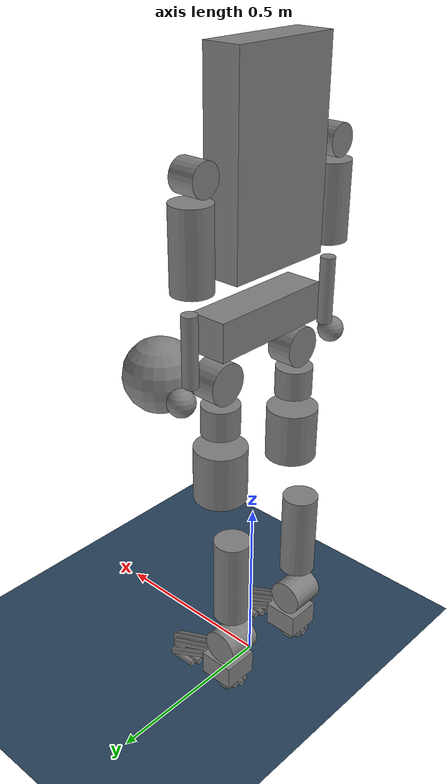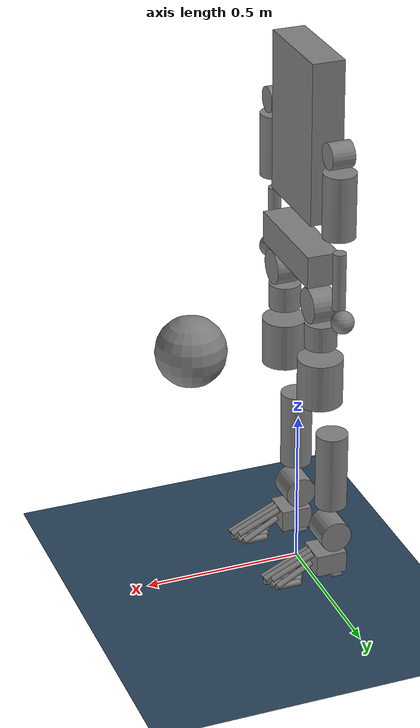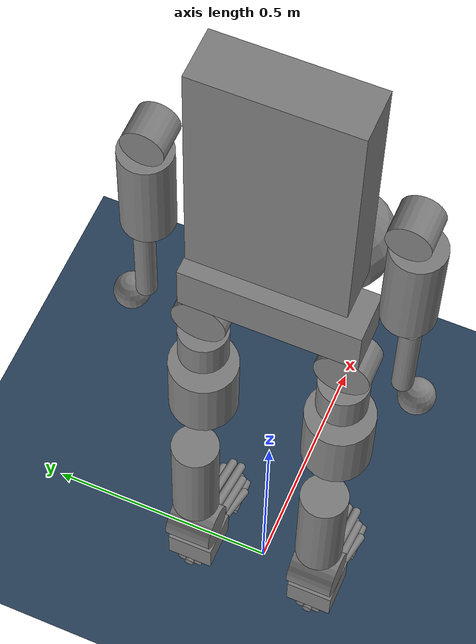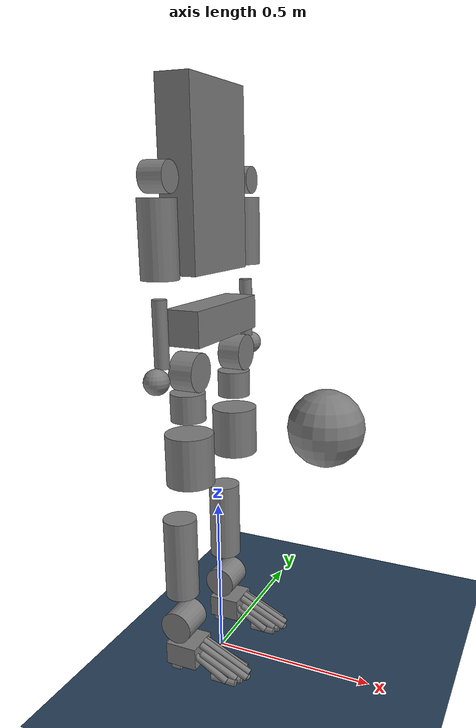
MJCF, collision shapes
<mujoco model="InRealV2_Soccer">
  <compiler angle="radian" meshdir="../mesh/"/>
  <option timestep="0.005"/>

  <default>
    <default class="foot_contact">
      <geom friction="1.2 0.005 0.0001" condim="3"
            solref="0.01 1.0" solimp="0.95 0.99 0.001 0.5 2"/>
    </default>
  </default>

  <asset>
    <!-- ── 机器人网格 ─────────────────────────────────────────── -->
    <mesh name="R"   content_type="model/stl" file="R.stl"/>
    <mesh name="L1"  content_type="model/stl" file="L1.stl"/>
    <mesh name="L11" content_type="model/stl" file="L1.stl" scale="1 -1 1"/>
    <mesh name="L2"  content_type="model/stl" file="L2.stl"/>
    <mesh name="L21" content_type="model/stl" file="L2.stl" scale="1 -1 1"/>
    <mesh name="L3"  content_type="model/stl" file="L3.stl"/>
    <mesh name="L31" content_type="model/stl" file="L3.stl" scale="1 -1 1"/>
    <mesh name="L4"  content_type="model/stl" file="L4.stl"/>
    <mesh name="L41" content_type="model/stl" file="L4.stl" scale="1 -1 1"/>
    <mesh name="L5"  content_type="model/stl" file="L5.stl"/>
    <mesh name="L51" content_type="model/stl" file="L5.stl" scale="1 -1 1"/>
    <mesh name="L6"  content_type="model/stl" file="L6.stl"/>
    <mesh name="L7"  content_type="model/stl" file="L7.stl"/>
    <mesh name="L61" content_type="model/stl" file="L6.stl" scale="1 -1 1"/>
    <mesh name="L71" content_type="model/stl" file="L7.stl" scale="1 -1 1"/>
    <mesh name="W"   content_type="model/stl" file="W.stl"/>
    <mesh name="C"   content_type="model/stl" file="C.stl"/>
    <mesh name="A1"  content_type="model/stl" file="A1.stl"/>
    <mesh name="A11" content_type="model/stl" file="A1.stl" scale="1 -1 1"/>
    <mesh name="A2"  content_type="model/stl" file="A2.stl"/>
    <mesh name="A21" content_type="model/stl" file="A2.stl" scale="1 -1 1"/>
    <mesh name="A3"  content_type="model/stl" file="A3.stl"/>
    <mesh name="A31" content_type="model/stl" file="A3.stl" scale="1 -1 1"/>
    <!-- ── 足球网格 ──────────────────────────────────────────────── -->
    <mesh name="soccer" content_type="model/stl" file="soccer.stl" scale="0.115 0.115 0.115"/>
  </asset>

  <!-- ── 场景显示 ────────────────────────────────────────────────── -->
  <statistic center="0 0 1.0" extent="1.0"/>
  <visual>
    <headlight diffuse="0.6 0.6 0.6" ambient="0.4 0.4 0.4" specular="0.1 0.1 0.1"/>
    <rgba haze="0.06 0.1 0.16 1"/>
    <global azimuth="225" elevation="-25" offwidth="2080" offheight="1170"/>
  </visual>
  <asset>
    <texture type="skybox" builtin="gradient" rgb1="0.3 0.5 0.7" rgb2="0 0 0" width="512" height="3072"/>
    <texture type="2d" name="groundplane" builtin="checker" mark="edge" rgb1="0.2 0.3 0.4" rgb2="0.1 0.2 0.3"
      markrgb="0.8 0.8 0.8" width="300" height="300"/>
    <material name="groundplane" texture="groundplane" texuniform="true" texrepeat="5 5" reflectance="0.2"/>
  </asset>

  <worldbody>
    <geom name="floor" size="100 100 0.01" type="plane" material="groundplane"
      contype="1" conaffinity="1" priority="1"
      friction="1.5 0.005 0.0001" condim="3"
      solimp="0.95 0.99 0.001" solref="0.01 1.0"/>
    <light name="main" directional="true" diffuse="0.6 0.6 0.6" specular="0.1 0.1 0.1"
      pos="0 0 10" dir="0.2 0.3 -1" castshadow="true"/>
    <light name="fill" directional="true" diffuse="0.25 0.25 0.3" specular="0.0 0.0 0.0"
      pos="0 0 5" dir="-0.2 -0.3 -1" castshadow="false"/>

    <!-- ── 机器人本体 ──────────────────────────────────────────── -->
    <body name="pelvis" pos="0 0 1.12">
      <camera name="follow_pelvis" pos="-1.2 4.0 1.2" euler="0 0 0" mode="track"/>
      <inertial pos="0 0 -0.146" mass="10.983"
              fullinertia="0.0767 0.067598 0.06648 0.0 0.0002 0.000035"/>
      <geom type="mesh" contype="0" conaffinity="0" group="1" density="0" mesh="R"/>
      <geom size="0.05 0.175 0.05" pos="0 0 -0.035" type="box" group="3"/>
      <joint name="floating_base_joint" type="free"/>

      <!-- 左腿 -->
      <body name="left_hip_pitch_link" pos="0 0.1407 -0.159">
        <inertial pos="0 -0.001 0" mass="2.425"
                  fullinertia="0.0039 0.00294 0.003173 0.0 0.0 0.0"/>
        <joint name="left_hip_pitch_joint" pos="0 0 0" axis="0 1 0"
               range="-1.57 1.57" actuatorfrcrange="-586.85 586.85" armature="0.291"/>
        <geom type="mesh" contype="0" conaffinity="0" group="1" density="0" mesh="L1"/>
        <geom size="0.055 0.035" quat="0.707035 0 0.707179 0" type="cylinder" group="3"/>
        <body name="left_hip_roll_link" pos="-0.01 0 0">
          <inertial pos="0.00137 0 -0.134" mass="3.246"
                  fullinertia="0.011788 0.013069 0.006657 0.0 -0.000619 0.0"/>
          <joint name="left_hip_roll_joint" pos="0 0 0" axis="1 0 0"
                 range="-0.35 1.57" actuatorfrcrange="-336 336" armature="0.181"/>
          <geom type="mesh" contype="0" conaffinity="0" group="1" density="0" mesh="L2"/>
          <geom size="0.05 0.04" pos="0 0 -0.1" type="cylinder" group="3"/>
          <body name="left_hip_yaw_link" pos="0 0 -0.2051">
            <inertial pos="-0.0183 -0.00116 -0.126" mass="4.39"
                  fullinertia="0.022056 0.022705 0.006937 -0.000147 -0.003543 -0.000577"/>
            <joint name="left_hip_yaw_joint" pos="0 0 0" axis="0 0 1"
                   range="-0.785 0.785" actuatorfrcrange="-336 336" armature="0.181"/>
            <geom type="mesh" contype="0" conaffinity="0" group="1" density="0" mesh="L3"/>
            <geom size="0.07 0.075" pos="0 0 -0.05" type="cylinder" group="3"/>
            <body name="left_knee_link" pos="-0.043 0 -0.2226">
              <inertial pos="0.00177 -0.001 -0.255" mass="4.497"
                      fullinertia="0.041829 0.041676 0.00548 0.0 -0.001088 -0.000912"/>
              <joint name="left_knee_joint" pos="0 0 0" axis="0 1 0"
                     range="-0.26 2.2" actuatorfrcrange="-338.4 338.4" armature="0.0509"/>
              <geom type="mesh" contype="0" conaffinity="0" group="1" density="0" mesh="L4"/>
              <geom size="0.05 0.125" pos="0 0 -0.15" type="cylinder" group="3"/>
              <body name="left_ankle_pitch_link" pos="0 0 -0.37">
                <inertial pos="0.0117 0.001 -0.06" mass="0.954"
                      fullinertia="0.001685 0.001915 0.001284 0.000011 0.000243 -0.000055"/>
                <joint name="left_ankle_pitch_joint" pos="0 0 0" axis="0 1 0"
                       range="-0.6 0.75" actuatorfrcrange="-338.4 338.4" armature="0.0509"/>
                <geom type="mesh" contype="0" conaffinity="0" group="1" density="0" mesh="L5"/>
                <geom size="0.05 0.05" quat="0.707035 0.707179 0 0" type="cylinder" group="3"/>
                <body name="left_ankle_roll_link" pos="0.014 0 -0.085" childclass="foot_contact">
                  <site name="Ltoe"     size="0.02"/>
                  <site name="Lsoles"   size="0.01" pos="0 0 -0.055"/>
                  <site name="Lsoles_f" size="0.01" pos="0.2 0.0 -0.055"/>
                  <inertial pos="0.045 0 -0.022" mass="0.91"
                          fullinertia="0.001 0.00307 0.002570 0.0 0.000236 0.0"/>
                  <joint name="left_ankle_roll_joint" pos="0 0 0" axis="1 0 0"
                         range="-0.26 0.26" actuatorfrcrange="-38.4 38.4" armature="0.001584"/>
                  <geom type="mesh" contype="0" conaffinity="0" group="1" density="0" mesh="L6"/>
                  <geom size="0.01 0.025" pos="-0.03 0 -0.056"    quat="0.707035 0 0.707179 0" type="cylinder" group="3"/>
                  <geom size="0.01 0.0225" pos="-0.026 0.018 -0.056"  quat="0.707035 0 0.707179 0" type="cylinder" group="3"/>
                  <geom size="0.01 0.015"  pos="-0.022 0.036 -0.056"  quat="0.707035 0 0.707179 0" type="cylinder" group="3"/>
                  <geom size="0.01 0.0225" pos="-0.026 -0.018 -0.056" quat="0.707035 0 0.707179 0" type="cylinder" group="3"/>
                  <geom size="0.01 0.015"  pos="-0.022 -0.036 -0.056" quat="0.707035 0 0.707179 0" type="cylinder" group="3"/>
                  <geom size="0.05 0.05 0.035" pos="0 0 -0.01" type="box" group="3"/>
                  <geom pos="0.131255 0 -0.0463567" type="mesh" contype="0" conaffinity="0" group="1" density="0" mesh="L7"/>
                  <geom size="0.01 0.06"  pos="0.1412551 0 -0.0563567"     quat="0.707035 0 0.707179 0" type="cylinder" group="3"/>
                  <geom size="0.01 0.05"  pos="0.1412551 0.02 -0.0563567"  quat="0.707035 0 0.707179 0" type="cylinder" group="3"/>
                  <geom size="0.01 0.04"  pos="0.1412551 0.04 -0.0563567"  quat="0.707035 0 0.707179 0" type="cylinder" group="3"/>
                  <geom size="0.01 0.05"  pos="0.1412551 -0.02 -0.0563567" quat="0.707035 0 0.707179 0" type="cylinder" group="3"/>
                  <geom size="0.01 0.04"  pos="0.1412551 -0.04 -0.0563567" quat="0.707035 0 0.707179 0" type="cylinder" group="3"/>
                  <!-- 鞋面碰撞体：沿鞋背曲面向脚尖排布 -->
                  <geom size="0.01 0.065" pos="0.12 0.036 -0.028"   quat="0.5396 -0.0421 0.8404 0.0270" type="cylinder" group="3"/>
                  <geom size="0.01 0.075" pos="0.12 0.020 -0.01"    quat="0.5403 0 0.8415 0" type="cylinder" group="3"/>
                  <geom size="0.01 0.085" pos="0.13 0.005 -0.008"   quat="0.5403 0 0.8415 0" type="cylinder" group="3"/>
                  <geom size="0.01 0.085" pos="0.13 -0.015 -0.012"  quat="0.5403 0 0.8415 0" type="cylinder" group="3"/>
                  <geom size="0.01 0.065" pos="0.12 -0.03 -0.022"   quat="0.5403 0 0.8415 0" type="cylinder" group="3"/>
                  <geom size="0.01 0.06"  pos="0.10 -0.04 -0.03"    quat="0.5396 0.0421 0.8404 -0.0270" type="cylinder" group="3"/>
                  <body name="left_toe_link" pos="0.1 0 -0.02"/>
                </body>
              </body>
            </body>
          </body>
        </body>
      </body>

      <!-- 右腿 -->
      <body name="right_hip_pitch_link" pos="0 -0.1417 -0.159">
        <inertial pos="0 0.001 0" mass="2.425"
                fullinertia="0.0039 0.00294 0.003173 0.0 0.0 0.0"/>
        <joint name="right_hip_pitch_joint" pos="0 0 0" axis="0 1 0"
               range="-1.57 1.57" actuatorfrcrange="-586.85 586.85" armature="0.291"/>
        <geom type="mesh" contype="0" conaffinity="0" group="1" density="0" mesh="L11"/>
        <geom size="0.055 0.035" quat="0.707035 0 0.707179 0" type="cylinder" group="3"/>
        <body name="right_hip_roll_link" pos="-0.01 0 0">
          <inertial pos="0.00137 0 -0.134" mass="3.246"
                  fullinertia="0.011788 0.013069 0.006657 0.0 -0.000619 0.0"/>
          <joint name="right_hip_roll_joint" pos="0 0 0" axis="1 0 0"
                 range="-1.57 0.35" actuatorfrcrange="-336 336" armature="0.181"/>
          <geom type="mesh" contype="0" conaffinity="0" group="1" density="0" mesh="L21"/>
          <geom size="0.05 0.04" pos="0 0 -0.1" type="cylinder" group="3"/>
          <body name="right_hip_yaw_link" pos="0 0 -0.2051">
            <inertial pos="-0.0183 0.00116 -0.126" mass="4.39"
                    fullinertia="0.022056 0.022705 0.006937 0.000147 -0.003543 0.000577"/>
            <joint name="right_hip_yaw_joint" pos="0 0 0" axis="0 0 1"
                   range="-0.785 0.785" actuatorfrcrange="-336 336" armature="0.181"/>
            <geom type="mesh" contype="0" conaffinity="0" group="1" density="0" mesh="L31"/>
            <geom size="0.07 0.075" pos="0 0 -0.05" type="cylinder" group="3"/>
            <body name="right_knee_link" pos="-0.043 0 -0.2226">
              <inertial pos="0.00177 -0.001 -0.255" mass="4.497"
                      fullinertia="0.041829 0.041676 0.00548 0.0 -0.001088 0.000912"/>
              <joint name="right_knee_joint" pos="0 0 0" axis="0 1 0"
                     range="-0.26 2.2" actuatorfrcrange="-338.4 338.4" armature="0.0509"/>
              <geom type="mesh" contype="0" conaffinity="0" group="1" density="0" mesh="L41"/>
              <geom size="0.05 0.125" pos="0 0 -0.15" type="cylinder" group="3"/>
              <body name="right_ankle_pitch_link" pos="0 0 -0.37">
                <inertial pos="0.0117 -0.001 -0.06" mass="0.954"
                        fullinertia="0.001685 0.001915 0.001284 -0.000011 0.000243 0.000055"/>
                <joint name="right_ankle_pitch_joint" pos="0 0 0" axis="0 1 0"
                       range="-0.6 0.75" actuatorfrcrange="-338.4 338.4" armature="0.0509"/>
                <geom type="mesh" contype="0" conaffinity="0" group="1" density="0" mesh="L51"/>
                <geom size="0.05 0.05" quat="0.707035 0.707179 0 0" type="cylinder" group="3"/>
                <body name="right_ankle_roll_link" pos="0.014 0 -0.085" childclass="foot_contact">
                  <site name="Rtoe"     size="0.02"/>
                  <site name="Rsoles"   size="0.01" pos="0 0 -0.055"/>
                  <site name="Rsoles_f" size="0.01" pos="0.2 0.0 -0.055"/>
                  <inertial pos="0.045 0 -0.022" mass="0.91"
                          fullinertia="0.001 0.00307 0.002570 0.0 0.000236 0.0"/>
                  <joint name="right_ankle_roll_joint" pos="0 0 0" axis="1 0 0"
                         range="-0.26 0.26" actuatorfrcrange="-38.4 38.4" armature="0.001584"/>
                  <geom type="mesh" contype="0" conaffinity="0" group="1" density="0" mesh="L61"/>
                  <geom size="0.05 0.05 0.035" pos="0 0 -0.01" type="box" group="3"/>
                  <geom size="0.01 0.025" pos="-0.03 0 -0.056"    quat="0.707035 0 0.707179 0" type="cylinder" group="3"/>
                  <geom size="0.01 0.0225" pos="-0.026 0.018 -0.056"  quat="0.707035 0 0.707179 0" type="cylinder" group="3"/>
                  <geom size="0.01 0.015"  pos="-0.022 0.036 -0.056"  quat="0.707035 0 0.707179 0" type="cylinder" group="3"/>
                  <geom size="0.01 0.0225" pos="-0.026 -0.018 -0.056" quat="0.707035 0 0.707179 0" type="cylinder" group="3"/>
                  <geom size="0.01 0.015"  pos="-0.022 -0.036 -0.056" quat="0.707035 0 0.707179 0" type="cylinder" group="3"/>
                  <geom pos="0.131255 0 -0.0463567" type="mesh" contype="0" conaffinity="0" group="1" density="0" mesh="L71"/>
                  <geom size="0.01 0.06"  pos="0.1412551 0 -0.0563567"     quat="0.707035 0 0.707179 0" type="cylinder" group="3"/>
                  <geom size="0.01 0.05"  pos="0.1412551 0.02 -0.0563567"  quat="0.707035 0 0.707179 0" type="cylinder" group="3"/>
                  <geom size="0.01 0.04"  pos="0.1412551 0.04 -0.0563567"  quat="0.707035 0 0.707179 0" type="cylinder" group="3"/>
                  <geom size="0.01 0.05"  pos="0.1412551 -0.02 -0.0563567" quat="0.707035 0 0.707179 0" type="cylinder" group="3"/>
                  <geom size="0.01 0.04"  pos="0.1412551 -0.04 -0.0563567" quat="0.707035 0 0.707179 0" type="cylinder" group="3"/>
                  <!-- 鞋面碰撞体：沿鞋背曲面向脚尖排布 -->
                  <geom size="0.02 0.041" pos="0.030 0 -0.020" quat="0.707035 0.707179 0 0" type="cylinder" group="3"/>
                  <geom size="0.01 0.065" pos="0.12 0.036 -0.028"   quat="0.5396 -0.0421 0.8404 0.0270" type="cylinder" group="3"/>
                  <geom size="0.01 0.075" pos="0.12 0.020 -0.01"    quat="0.5403 0 0.8415 0" type="cylinder" group="3"/>
                  <geom size="0.01 0.085" pos="0.13 0.005 -0.008"   quat="0.5403 0 0.8415 0" type="cylinder" group="3"/>
                  <geom size="0.01 0.085" pos="0.13 -0.015 -0.012"  quat="0.5403 0 0.8415 0" type="cylinder" group="3"/>
                  <geom size="0.01 0.065" pos="0.12 -0.03 -0.022"   quat="0.5403 0 0.8415 0" type="cylinder" group="3"/>
                  <geom size="0.01 0.06"  pos="0.10 -0.04 -0.03"    quat="0.5396 0.0421 0.8404 -0.0270" type="cylinder" group="3"/>
                  <body name="right_toe_link" pos="0.1 0 -0.02"/>
                </body>
              </body>
            </body>
          </body>
        </body>
      </body>

      <!-- 腰部 + 躯干 + 双臂 -->
      <body name="waist_pitch_link">
        <inertial pos="0 0 0.042" mass="4.139"
                fullinertia="0.014 0.015 0.00576 0.0 0.0 0.0"/>
        <joint name="waist_pitch_joint" pos="0 0 0" axis="0 1 0"
               range="-1.2 1.2" actuatorfrcrange="-336 336" armature="0.181"/>
        <geom type="mesh" contype="0" conaffinity="0" group="1" density="0" mesh="W"/>
        <body name="torso_link" pos="-0.018 0 0.3515">
          <site name="IMU" pos="0 0 0" size="0.01" quat="1 0 0 0"/>
          <inertial pos="0.0082 0 0.011" mass="14.292"
                  fullinertia="0.36 0.276 0.1486 0.0 0.0215 -0.0022"/>
          <joint name="waist_yaw_joint" pos="0 0 0" axis="0 0 1"
                 range="-3.14 3.14" actuatorfrcrange="-336 336" armature="0.036"/>
          <geom type="mesh" contype="0" conaffinity="0" group="1" density="0" mesh="C"/>
          <geom size="0.05 0.15 0.25" type="box" group="3"/>
          <!-- 电池（URDF battery_joint: pos="0.033 0 -0.14"，质量 7.5 kg，fixed joint） -->
          <body name="battery" pos="0.033 0 -0.14">
            <inertial pos="0 0 0" mass="7.5"
                    fullinertia="0.0365625 0.0203906 0.0389531 0.0 0.0 0.0"/>
          </body>

          <!-- 左臂 -->
          <body name="left_shoulder_pitch_link" pos="0 0.2207 0">
            <inertial pos="0 -0.0036 0" mass="2.451"
                    fullinertia="0.00412 0.00285 0.00330 0.0 0.0 0.0"/>
            <joint name="left_shoulder_pitch_joint" pos="0 0 0" axis="0 1 0"
                   range="-3.14 1.57" actuatorfrcrange="-336 336" armature="0.0509"/>
            <geom type="mesh" contype="0" conaffinity="0" group="1" density="0" mesh="A1"/>
            <geom size="0.04 0.035" pos="0 0.01 0" quat="0.707035 0 0.707179 0" type="cylinder" group="3"/>
            <body name="left_shoulder_roll_link">
              <inertial pos="-0.0012 -0.0025 -0.192" mass="2.526"
                      fullinertia="0.0174 0.019585 0.0046 0.0 0.000419 0.000297"/>
              <joint name="left_shoulder_roll_joint" pos="0 0 0" axis="1 0 0"
                     range="-0.13 1.57" actuatorfrcrange="-336 336" armature="0.0509"/>
              <geom type="mesh" contype="0" conaffinity="0" group="1" density="0" mesh="A2"/>
              <geom size="0.05 0.1" pos="0 0.02 -0.15" type="cylinder" group="3"/>
              <body name="left_elbow_link" pos="0 0 -0.2385">
                <inertial pos="-0.0014 0.00597 -0.134" mass="1.679"
                        fullinertia="0.012 0.012758 0.002287 0.0 0.000256 0.000148"/>
                <joint name="left_elbow_joint" pos="0 0 0" axis="0 1 0"
                       range="-1.76 0" actuatorfrcrange="-112.2 112.2" armature="0.036"/>
                <geom type="mesh" contype="0" conaffinity="0" group="1" density="0" mesh="A3"/>
                <geom size="0.02 0.09" pos="0 0.03 -0.15" type="cylinder" group="3"/>
                <body name="left_hand_link" pos="0 0.03 -0.27">
                  <inertial pos="0 0 0" mass="1e-5" diaginertia="1e-15 1e-15 1e-15"/>
                  <geom type="sphere" size="0.035" pos="0 0.03 0.0" contype="1" conaffinity="1" group="3"/>
                </body>
              </body>
            </body>
          </body>

          <!-- 右臂 -->
          <body name="right_shoulder_pitch_link" pos="0 -0.2207 0">
            <inertial pos="0 0.0036 0" mass="2.451"
                    fullinertia="0.00412 0.00285 0.00330 0.0 0.0 0.0"/>
            <joint name="right_shoulder_pitch_joint" pos="0 0 0" axis="0 1 0"
                   range="-3.14 1.57" actuatorfrcrange="-336 336" armature="0.0509"/>
            <geom type="mesh" contype="0" conaffinity="0" group="1" density="0" mesh="A11"/>
            <geom size="0.04 0.035" pos="0 -0.01 0" quat="0.707035 0 0.707179 0" type="cylinder" group="3"/>
            <body name="right_shoulder_roll_link">
              <inertial pos="-0.0012 0.0025 -0.192" mass="2.526"
                      fullinertia="0.0174 0.019585 0.0046 0.0 0.000419 -0.000297"/>
              <joint name="right_shoulder_roll_joint" pos="0 0 0" axis="1 0 0"
                     range="-1.57 0.13" actuatorfrcrange="-336 336" armature="0.0509"/>
              <geom type="mesh" contype="0" conaffinity="0" group="1" density="0" mesh="A21"/>
              <geom size="0.05 0.1" pos="0 -0.02 -0.15" type="cylinder" group="3"/>
              <body name="right_elbow_link" pos="0 0 -0.2385">
                <inertial pos="-0.0014 -0.00597 -0.134" mass="1.679"
                        fullinertia="0.012 0.012758 0.002287 0.0 0.000256 -0.000148"/>
                <joint name="right_elbow_joint" pos="0 0 0" axis="0 1 0"
                       range="-1.76 0" actuatorfrcrange="-112.2 112.2" armature="0.036"/>
                <geom type="mesh" contype="0" conaffinity="0" group="1" density="0" mesh="A31"/>
                <geom size="0.02 0.09" pos="0 -0.03 -0.15" type="cylinder" group="3"/>
                <body name="right_hand_link" pos="0 -0.03 -0.27">
                  <inertial pos="0 0 0" mass="1e-5" diaginertia="1e-15 1e-15 1e-15"/>
                  <geom type="sphere" size="0.035" pos="0 -0.03 0.0" contype="1" conaffinity="1" group="3"/>
                </body>
              </body>
            </body>
          </body>
        </body>
      </body>
    </body>

    <!-- ── 足球（初始位置：机器人正前方 0.35m，离地 0.80m）─── -->
    <!-- reset() 会动态重置其位置，此处仅作初始放置 -->
    <body name="soccer" pos="0.35 0 0.80">
      <inertial pos="0 0 0" mass="0.43" diaginertia="0.0035 0.0035 0.0035"/>
      <joint name="soccer_freejoint" type="free"/>
      <!-- 视觉网格（无碰撞） -->
      <geom type="mesh" contype="0" conaffinity="0" group="1" density="0" mesh="soccer"/>
      <!-- 碰撞球体：匹配 Isaac Lab restitution∈[0.4,0.7]（中值 0.55） -->
      <geom size="0.11" condim="3"
            friction="0.75 0.005 0.0001"
            solref="0.015 0.4"
            solimp="0.9 0.95 0.001 0.5 2"/>
    </body>
  </worldbody>

  <!-- ── 执行器（仅机器人关节，与 inreal_v2.xml 完全一致）───── -->
  <actuator>
    <motor name="left_hip_pitch_joint"      joint="left_hip_pitch_joint"/>
    <motor name="left_hip_roll_joint"       joint="left_hip_roll_joint"/>
    <motor name="left_hip_yaw_joint"        joint="left_hip_yaw_joint"/>
    <motor name="left_knee_joint"           joint="left_knee_joint"/>
    <motor name="left_ankle_pitch_joint"    joint="left_ankle_pitch_joint"/>
    <motor name="left_ankle_roll_joint"     joint="left_ankle_roll_joint"/>

    <motor name="right_hip_pitch_joint"     joint="right_hip_pitch_joint"/>
    <motor name="right_hip_roll_joint"      joint="right_hip_roll_joint"/>
    <motor name="right_hip_yaw_joint"       joint="right_hip_yaw_joint"/>
    <motor name="right_knee_joint"          joint="right_knee_joint"/>
    <motor name="right_ankle_pitch_joint"   joint="right_ankle_pitch_joint"/>
    <motor name="right_ankle_roll_joint"    joint="right_ankle_roll_joint"/>

    <motor name="waist_pitch_joint"         joint="waist_pitch_joint"/>
    <motor name="waist_yaw_joint"           joint="waist_yaw_joint"/>

    <motor name="left_shoulder_pitch_joint" joint="left_shoulder_pitch_joint"/>
    <motor name="left_shoulder_roll_joint"  joint="left_shoulder_roll_joint"/>
    <motor name="left_elbow_joint"          joint="left_elbow_joint"/>

    <motor name="right_shoulder_pitch_joint" joint="right_shoulder_pitch_joint"/>
    <motor name="right_shoulder_roll_joint"  joint="right_shoulder_roll_joint"/>
    <motor name="right_elbow_joint"          joint="right_elbow_joint"/>
  </actuator>

  <!-- ── 传感器（IMU：加速度计 + 陀螺仪，供 SoccerConfig.gyro_sensor_name 使用）── -->
  <sensor>
    <accelerometer name="BodyAcc"  site="IMU" noise="0.1"/>
    <gyro           name="BodyGyro" site="IMU" noise="0.001"/>
  </sensor>
</mujoco>
